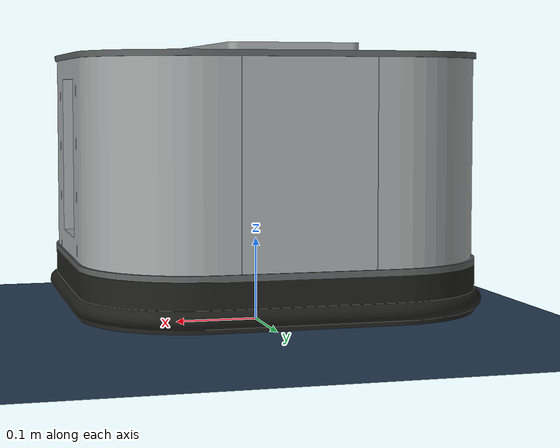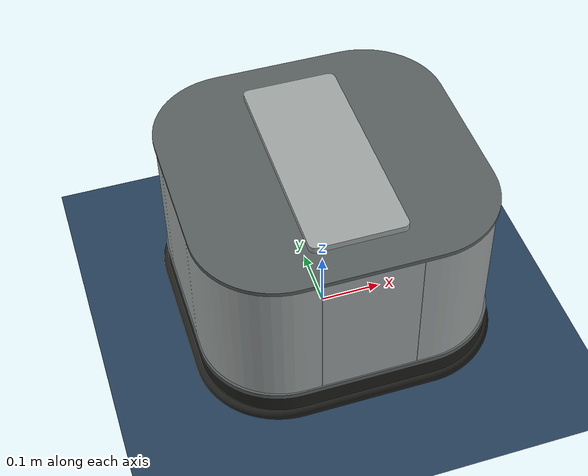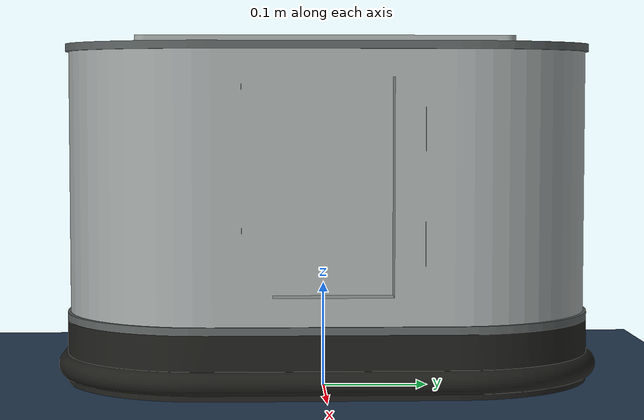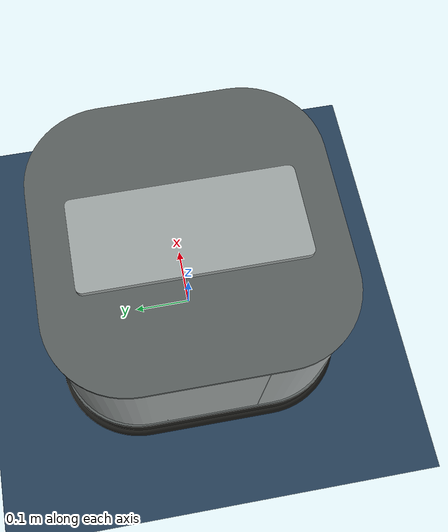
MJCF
<mujoco model="base scene">
    <include file="base.xml"/>

    <statistic center="0 0 0.2" extent="0.8" meansize="0.05"/>

    <visual>
        <headlight diffuse="0.6 0.6 0.6" ambient="0.1 0.1 0.1" specular="0 0 0"/>
        <rgba haze="0.15 0.25 0.35 1"/>
        <global azimuth="140" elevation="-20" offwidth="1920" offheight="1080"/>
    </visual>

    <asset>
        <texture type="skybox" builtin="gradient" rgb1="0.3 0.5 0.7" rgb2="0 0 0" width="512" height="3072"/>
        <texture type="2d" name="groundplane" builtin="checker" mark="edge" rgb1="0.2 0.3 0.4" rgb2="0.1 0.2 0.3" markrgb="0.8 0.8 0.8" width="300" height="300"/>
        <material name="groundplane" texture="groundplane" texuniform="true" texrepeat="5 5" reflectance="0.2"/>
    </asset>

    <worldbody>
        <light name="top" pos="0 0 1" directional="true"/>
        <geom name="floor" size="0 0 0.05" type="plane" material="groundplane"/>
        <camera name="wide_angle" pos="0 0 1" fovy="70" mode="targetbodycom" target="base_link"/>
    </worldbody>

    <keyframe>
        <key name="test1" qpos=".0 .0 .0" qvel="0.1 .0 0"/>
        <key name="test2" qpos="0.4 0.5 0.6" qvel="0.5 0.5 0.5"/>
    </keyframe>
</mujoco>

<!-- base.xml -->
<mujoco model="base">
    <compiler angle="radian" meshdir="assets"/>

    <!-- 使用隐式快速积分器，适合实时仿真，数值稳定性好 -->
    <option integrator="implicitfast"/>

    <default>
        <default class="visual">
            <!-- contype="0" conaffinity="0"：不参与碰撞检测 -->
            <!-- group="2"：渲染组别 -->
            <geom type="mesh" contype="0" conaffinity="0" group="2"/>
        </default>

        <default class="collision">
            <!-- group="3"：碰撞组别 -->
            <geom type="mesh" group="3"/>
        </default>
    </default>

    <asset>
        <material name="black" rgba="0.11372549 0.11372549 0.10196078 1"/>
        <material name="gray" rgba="0.62745098 0.65098039 0.64705882 1"/>
        <material name="dark_gray" rgba="0.35294118 0.37647059 0.37254902 1"/>

        <!-- 保险杠/防撞条 -->
        <mesh file="base/bumper.stl"/>
        <!-- 底板 -->
        <mesh file="base/bottom_plate.stl"/>
        <!-- 主体外壳 -->
        <mesh file="base/body.stl"/>
        <!-- 顶板 -->
        <mesh file="base/top_plate.stl"/>
        <!-- 机械臂安装板 -->
        <mesh file="base/arm_plate.stl"/>
    </asset>

    <worldbody>
        <body name="base_link">
            <!-- NOTE 惯性参数 -->
            <!-- 质心位置：(0, 0, 0.035) 米（略高于几何中心） -->
            <!-- 质量：60 kg（较重的移动底盘） -->
            <!-- 转动惯量：对角矩阵 (0.001, 0.001, 0.001) -->
            <inertial pos="0 0 0.035" mass="60" diaginertia="0.001 0.001 0.001"/>

            <!-- NOTE 自由度（Joints）- 全向移动底盘 -->
            <!-- X轴平移 -->
            <joint name="joint_x" type="slide" axis="1 0 0"/>
            <!-- Y轴平移 -->
            <joint name="joint_y" type="slide" axis="0 1 0"/>
            <!-- 绕Z轴旋转（yaw）-->
            <joint name="joint_th"/>
            <!-- ps 以上构成了一个 平面移动平台（类似差速驱动或全向轮底盘），具有 3 个自由度。 -->

            <!-- 视觉几何体（5个）：应用不同材质进行渲染 -->
            <geom name="bumper_visual" class="visual" mesh="bumper" material="black"/>
            <geom name="bottom_plate_visual" class="visual" mesh="bottom_plate" material="dark_gray"/>
            <geom name="body_visual" class="visual" mesh="body" material="gray"/>
            <geom name="top_plate_visual" class="visual" mesh="top_plate" material="dark_gray"/>
            <geom name="arm_plate_visual" class="visual" mesh="arm_plate" material="gray"/>

            <!-- 碰撞几何体（5个）：用于物理碰撞计算 -->
            <geom name="bumper_collision" class="collision" mesh="bumper"/>
            <geom name="bottom_plate_collision" class="collision" mesh="bottom_plate"/>
            <geom name="body_collision" class="collision" mesh="body"/>
            <geom name="top_plate_collision" class="collision" mesh="top_plate"/>
            <geom name="arm_plate_collision" class="collision" mesh="arm_plate"/>
        </body>
    </worldbody>

    <actuator>
        <!-- NOTE 三个位置控制器（Position Control）： -->
        <!-- ps 这种配置使得底盘在平移时非常"硬"（快速响应目标位置），而旋转时相对柔和。 -->
    </actuator>
</mujoco>
